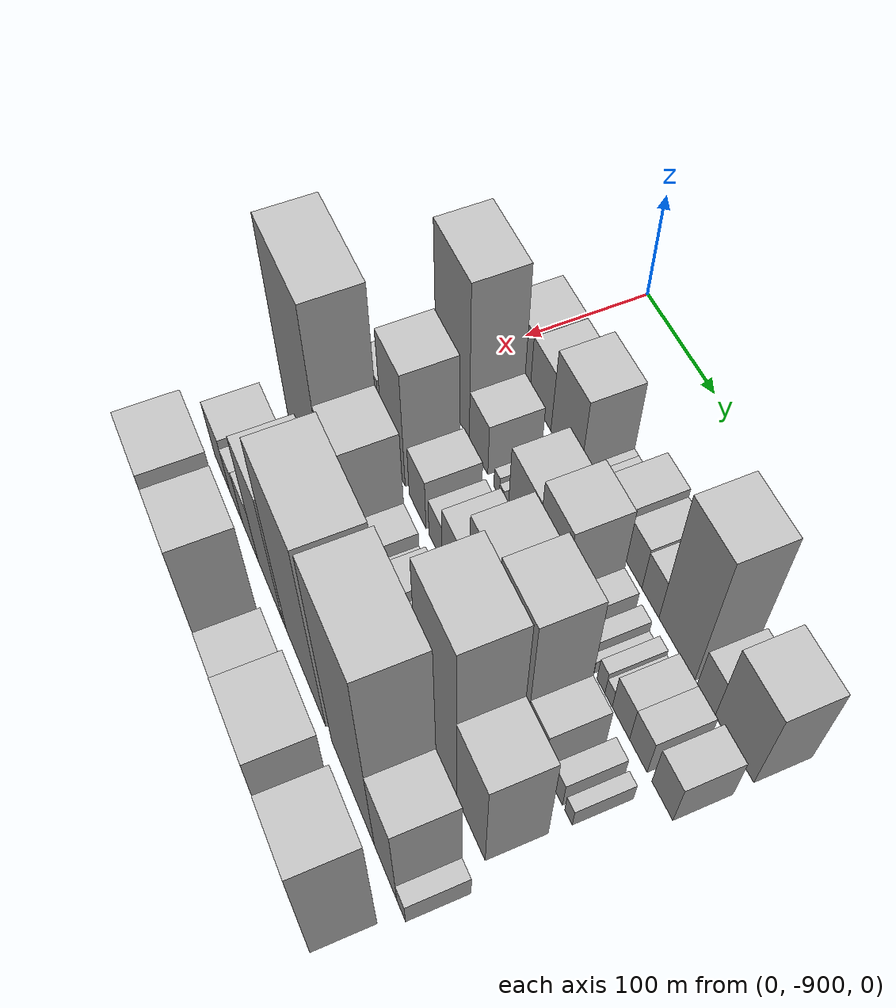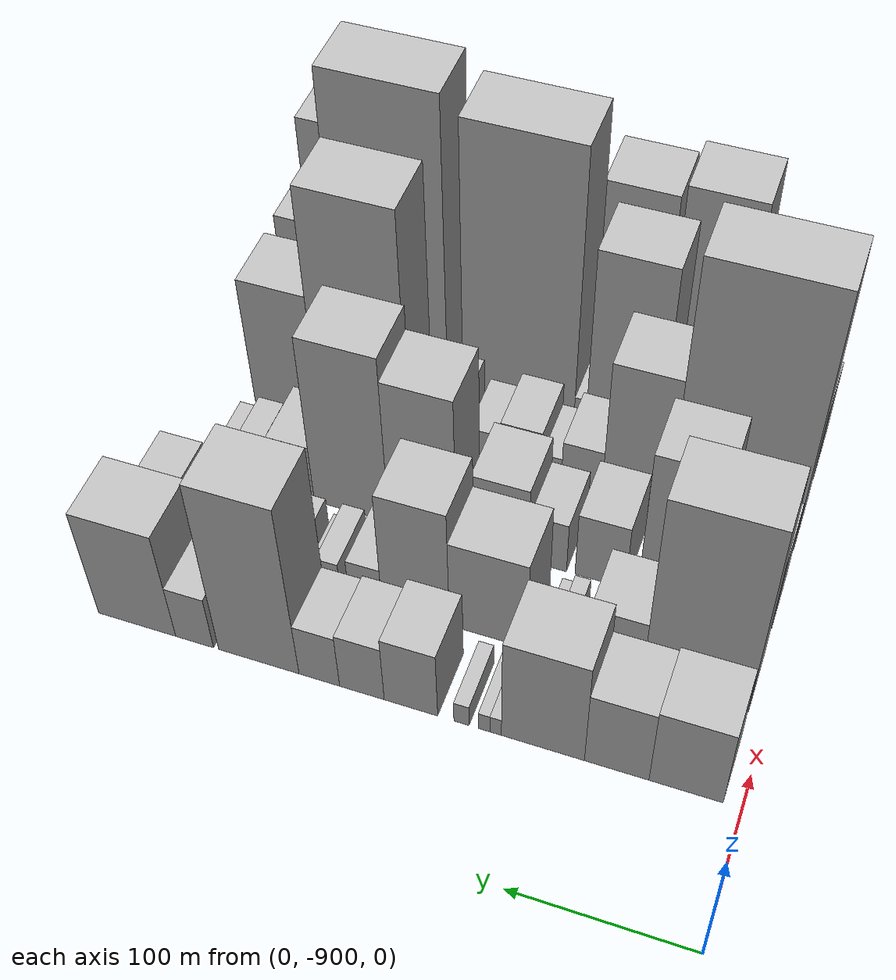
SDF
<sdf version="1.6">
 <world name="default">
  <model name="building_1">
   <static>1</static>
   <pose>100.0000 -870.5665 0 0.000000 0.000000 0.000000</pose>
   <link name="link">
    <pose>0 0 33.00 0 0 0</pose>
    <collision name="collision"><geometry><box><size>40.0000 38.8670 66.0000</size></box></geometry></collision>
    <visual name="visual">
     <cast_shadows>0</cast_shadows>
     <geometry><box><size>40.0000 38.8670 66.0000</size></box></geometry>
     <material>
      <script>
       <uri>model://HANNAS_wall/materials/scripts</uri>
       <uri>model://HANNAS_wall/materials/textures</uri>
       <name>vrc/HANNAS_wall</name>
      </script>
     </material>
    </visual>
   </link>
  </model>
  <model name="building_2">
   <static>1</static>
   <pose>100.0000 -833.9637 0 0.000000 0.000000 0.000000</pose>
   <link name="link">
    <pose>0 0 31.50 0 0 0</pose>
    <collision name="collision"><geometry><box><size>40.0000 34.3385 63.0000</size></box></geometry></collision>
    <visual name="visual">
     <cast_shadows>0</cast_shadows>
     <geometry><box><size>40.0000 34.3385 63.0000</size></box></geometry>
     <material>
      <script>
       <uri>model://HANNAS_wall/materials/scripts</uri>
       <uri>model://HANNAS_wall/materials/textures</uri>
       <name>vrc/HANNAS_wall</name>
      </script>
     </material>
    </visual>
   </link>
  </model>
  <model name="building_3">
   <static>1</static>
   <pose>100.0000 -794.2467 0 0.000000 0.000000 0.000000</pose>
   <link name="link">
    <pose>0 0 43.50 0 0 0</pose>
    <collision name="collision"><geometry><box><size>40.0000 45.0955 87.0000</size></box></geometry></collision>
    <visual name="visual">
     <cast_shadows>0</cast_shadows>
     <geometry><box><size>40.0000 45.0955 87.0000</size></box></geometry>
     <material>
      <script>
       <uri>model://HANNAS_wall/materials/scripts</uri>
       <uri>model://HANNAS_wall/materials/textures</uri>
       <name>vrc/HANNAS_wall</name>
      </script>
     </material>
    </visual>
   </link>
  </model>
  <model name="building_4">
   <static>1</static>
   <pose>100.0000 -768.5291 0 0.000000 0.000000 0.000000</pose>
   <link name="link">
    <pose>0 0 7.50 0 0 0</pose>
    <collision name="collision"><geometry><box><size>40.0000 6.3397 15.0000</size></box></geometry></collision>
    <visual name="visual">
     <cast_shadows>0</cast_shadows>
     <geometry><box><size>40.0000 6.3397 15.0000</size></box></geometry>
     <material>
      <script>
       <uri>model://HANNAS_wall/materials/scripts</uri>
       <uri>model://HANNAS_wall/materials/textures</uri>
       <name>vrc/HANNAS_wall</name>
      </script>
     </material>
    </visual>
   </link>
  </model>
  <model name="building_5">
   <static>1</static>
   <pose>100.0000 -762.1875 0 0.000000 0.000000 0.000000</pose>
   <link name="link">
    <pose>0 0 7.50 0 0 0</pose>
    <collision name="collision"><geometry><box><size>40.0000 6.3436 15.0000</size></box></geometry></collision>
    <visual name="visual">
     <cast_shadows>0</cast_shadows>
     <geometry><box><size>40.0000 6.3436 15.0000</size></box></geometry>
     <material>
      <script>
       <uri>model://HANNAS_wall/materials/scripts</uri>
       <uri>model://HANNAS_wall/materials/textures</uri>
       <name>vrc/HANNAS_wall</name>
      </script>
     </material>
    </visual>
   </link>
  </model>
  <model name="building_6">
   <static>1</static>
   <pose>100.0000 -749.7658 0 0.000000 0.000000 0.000000</pose>
   <link name="link">
    <pose>0 0 9.00 0 0 0</pose>
    <collision name="collision"><geometry><box><size>40.0000 8.4997 18.0000</size></box></geometry></collision>
    <visual name="visual">
     <cast_shadows>0</cast_shadows>
     <geometry><box><size>40.0000 8.4997 18.0000</size></box></geometry>
     <material>
      <script>
       <uri>model://HANNAS_wall/materials/scripts</uri>
       <uri>model://HANNAS_wall/materials/textures</uri>
       <name>vrc/HANNAS_wall</name>
      </script>
     </material>
    </visual>
   </link>
  </model>
  <model name="building_7">
   <static>1</static>
   <pose>100.0000 -721.4787 0 0.000000 0.000000 0.000000</pose>
   <link name="link">
    <pose>0 0 28.50 0 0 0</pose>
    <collision name="collision"><geometry><box><size>40.0000 30.0746 57.0000</size></box></geometry></collision>
    <visual name="visual">
     <cast_shadows>0</cast_shadows>
     <geometry><box><size>40.0000 30.0746 57.0000</size></box></geometry>
     <material>
      <script>
       <uri>model://HANNAS_wall/materials/scripts</uri>
       <uri>model://HANNAS_wall/materials/textures</uri>
       <name>vrc/HANNAS_wall</name>
      </script>
     </material>
    </visual>
   </link>
  </model>
  <model name="building_8">
   <static>1</static>
   <pose>100.0000 -693.7319 0 0.000000 0.000000 0.000000</pose>
   <link name="link">
    <pose>0 0 24.00 0 0 0</pose>
    <collision name="collision"><geometry><box><size>40.0000 25.4190 48.0000</size></box></geometry></collision>
    <visual name="visual">
     <cast_shadows>0</cast_shadows>
     <geometry><box><size>40.0000 25.4190 48.0000</size></box></geometry>
     <material>
      <script>
       <uri>model://HANNAS_wall/materials/scripts</uri>
       <uri>model://HANNAS_wall/materials/textures</uri>
       <name>vrc/HANNAS_wall</name>
      </script>
     </material>
    </visual>
   </link>
  </model>
  <model name="building_9">
   <static>1</static>
   <pose>100.0000 -669.3285 0 0.000000 0.000000 0.000000</pose>
   <link name="link">
    <pose>0 0 22.50 0 0 0</pose>
    <collision name="collision"><geometry><box><size>40.0000 23.3877 45.0000</size></box></geometry></collision>
    <visual name="visual">
     <cast_shadows>0</cast_shadows>
     <geometry><box><size>40.0000 23.3877 45.0000</size></box></geometry>
     <material>
      <script>
       <uri>model://HANNAS_wall/materials/scripts</uri>
       <uri>model://HANNAS_wall/materials/textures</uri>
       <name>vrc/HANNAS_wall</name>
      </script>
     </material>
    </visual>
   </link>
  </model>
  <model name="building_10">
   <static>1</static>
   <pose>100.0000 -634.0826 0 0.000000 0.000000 0.000000</pose>
   <link name="link">
    <pose>0 0 72.00 0 0 0</pose>
    <collision name="collision"><geometry><box><size>40.0000 47.1043 144.0000</size></box></geometry></collision>
    <visual name="visual">
     <cast_shadows>0</cast_shadows>
     <geometry><box><size>40.0000 47.1043 144.0000</size></box></geometry>
     <material>
      <script>
       <uri>model://HANNAS_wall/materials/scripts</uri>
       <uri>model://HANNAS_wall/materials/textures</uri>
       <name>vrc/HANNAS_wall</name>
      </script>
     </material>
    </visual>
   </link>
  </model>
  <model name="building_11">
   <static>1</static>
   <pose>100.0000 -596.2435 0 0.000000 0.000000 0.000000</pose>
   <link name="link">
    <pose>0 0 22.50 0 0 0</pose>
    <collision name="collision"><geometry><box><size>40.0000 22.5739 45.0000</size></box></geometry></collision>
    <visual name="visual">
     <cast_shadows>0</cast_shadows>
     <geometry><box><size>40.0000 22.5739 45.0000</size></box></geometry>
     <material>
      <script>
       <uri>model://HANNAS_wall/materials/scripts</uri>
       <uri>model://HANNAS_wall/materials/textures</uri>
       <name>vrc/HANNAS_wall</name>
      </script>
     </material>
    </visual>
   </link>
  </model>
  <model name="building_12">
   <static>1</static>
   <pose>100.0000 -561.6605 0 0.000000 0.000000 0.000000</pose>
   <link name="link">
    <pose>0 0 45.00 0 0 0</pose>
    <collision name="collision"><geometry><box><size>40.0000 46.5919 90.0000</size></box></geometry></collision>
    <visual name="visual">
     <cast_shadows>0</cast_shadows>
     <geometry><box><size>40.0000 46.5919 90.0000</size></box></geometry>
     <material>
      <script>
       <uri>model://HANNAS_wall/materials/scripts</uri>
       <uri>model://HANNAS_wall/materials/textures</uri>
       <name>vrc/HANNAS_wall</name>
      </script>
     </material>
    </visual>
   </link>
  </model>
  <model name="building_49">
   <static>1</static>
   <pose>155.0000 -861.0256 0 0.000000 0.000000 0.000000</pose>
   <link name="link">
    <pose>0 0 79.50 0 0 0</pose>
    <collision name="collision"><geometry><box><size>40.0000 57.9489 159.0000</size></box></geometry></collision>
    <visual name="visual">
     <cast_shadows>0</cast_shadows>
     <geometry><box><size>40.0000 57.9489 159.0000</size></box></geometry>
     <material>
      <script>
       <uri>model://HANNAS_wall/materials/scripts</uri>
       <uri>model://HANNAS_wall/materials/textures</uri>
       <name>vrc/HANNAS_wall</name>
      </script>
     </material>
    </visual>
   </link>
  </model>
  <model name="building_50">
   <static>1</static>
   <pose>155.0000 -816.4570 0 0.000000 0.000000 0.000000</pose>
   <link name="link">
    <pose>0 0 27.00 0 0 0</pose>
    <collision name="collision"><geometry><box><size>40.0000 31.1881 54.0000</size></box></geometry></collision>
    <visual name="visual">
     <cast_shadows>0</cast_shadows>
     <geometry><box><size>40.0000 31.1881 54.0000</size></box></geometry>
     <material>
      <script>
       <uri>model://HANNAS_wall/materials/scripts</uri>
       <uri>model://HANNAS_wall/materials/textures</uri>
       <name>vrc/HANNAS_wall</name>
      </script>
     </material>
    </visual>
   </link>
  </model>
  <model name="building_51">
   <static>1</static>
   <pose>155.0000 -786.3658 0 0.000000 0.000000 0.000000</pose>
   <link name="link">
    <pose>0 0 10.50 0 0 0</pose>
    <collision name="collision"><geometry><box><size>40.0000 8.9944 21.0000</size></box></geometry></collision>
    <visual name="visual">
     <cast_shadows>0</cast_shadows>
     <geometry><box><size>40.0000 8.9944 21.0000</size></box></geometry>
     <material>
      <script>
       <uri>model://HANNAS_wall/materials/scripts</uri>
       <uri>model://HANNAS_wall/materials/textures</uri>
       <name>vrc/HANNAS_wall</name>
      </script>
     </material>
    </visual>
   </link>
  </model>
  <model name="building_52">
   <static>1</static>
   <pose>155.0000 -778.3610 0 0.000000 0.000000 0.000000</pose>
   <link name="link">
    <pose>0 0 7.50 0 0 0</pose>
    <collision name="collision"><geometry><box><size>40.0000 7.0152 15.0000</size></box></geometry></collision>
    <visual name="visual">
     <cast_shadows>0</cast_shadows>
     <geometry><box><size>40.0000 7.0152 15.0000</size></box></geometry>
     <material>
      <script>
       <uri>model://HANNAS_wall/materials/scripts</uri>
       <uri>model://HANNAS_wall/materials/textures</uri>
       <name>vrc/HANNAS_wall</name>
      </script>
     </material>
    </visual>
   </link>
  </model>
  <model name="building_53">
   <static>1</static>
   <pose>155.0000 -745.5324 0 0.000000 0.000000 0.000000</pose>
   <link name="link">
    <pose>0 0 37.50 0 0 0</pose>
    <collision name="collision"><geometry><box><size>40.0000 44.6420 75.0000</size></box></geometry></collision>
    <visual name="visual">
     <cast_shadows>0</cast_shadows>
     <geometry><box><size>40.0000 44.6420 75.0000</size></box></geometry>
     <material>
      <script>
       <uri>model://HANNAS_wall/materials/scripts</uri>
       <uri>model://HANNAS_wall/materials/textures</uri>
       <name>vrc/HANNAS_wall</name>
      </script>
     </material>
    </visual>
   </link>
  </model>
  <model name="building_54">
   <static>1</static>
   <pose>155.0000 -703.4262 0 0.000000 0.000000 0.000000</pose>
   <link name="link">
    <pose>0 0 49.50 0 0 0</pose>
    <collision name="collision"><geometry><box><size>40.0000 39.5704 99.0000</size></box></geometry></collision>
    <visual name="visual">
     <cast_shadows>0</cast_shadows>
     <geometry><box><size>40.0000 39.5704 99.0000</size></box></geometry>
     <material>
      <script>
       <uri>model://HANNAS_wall/materials/scripts</uri>
       <uri>model://HANNAS_wall/materials/textures</uri>
       <name>vrc/HANNAS_wall</name>
      </script>
     </material>
    </visual>
   </link>
  </model>
  <model name="building_55">
   <static>1</static>
   <pose>155.0000 -673.8020 0 0.000000 0.000000 0.000000</pose>
   <link name="link">
    <pose>0 0 16.50 0 0 0</pose>
    <collision name="collision"><geometry><box><size>40.0000 19.6781 33.0000</size></box></geometry></collision>
    <visual name="visual">
     <cast_shadows>0</cast_shadows>
     <geometry><box><size>40.0000 19.6781 33.0000</size></box></geometry>
     <material>
      <script>
       <uri>model://HANNAS_wall/materials/scripts</uri>
       <uri>model://HANNAS_wall/materials/textures</uri>
       <name>vrc/HANNAS_wall</name>
      </script>
     </material>
    </visual>
   </link>
  </model>
  <model name="building_56">
   <static>1</static>
   <pose>155.0000 -652.4206 0 0.000000 0.000000 0.000000</pose>
   <link name="link">
    <pose>0 0 13.50 0 0 0</pose>
    <collision name="collision"><geometry><box><size>40.0000 13.0846 27.0000</size></box></geometry></collision>
    <visual name="visual">
     <cast_shadows>0</cast_shadows>
     <geometry><box><size>40.0000 13.0846 27.0000</size></box></geometry>
     <material>
      <script>
       <uri>model://HANNAS_wall/materials/scripts</uri>
       <uri>model://HANNAS_wall/materials/textures</uri>
       <name>vrc/HANNAS_wall</name>
      </script>
     </material>
    </visual>
   </link>
  </model>
  <model name="building_57">
   <static>1</static>
   <pose>155.0000 -642.7337 0 0.000000 0.000000 0.000000</pose>
   <link name="link">
    <pose>0 0 7.50 0 0 0</pose>
    <collision name="collision"><geometry><box><size>40.0000 6.2894 15.0000</size></box></geometry></collision>
    <visual name="visual">
     <cast_shadows>0</cast_shadows>
     <geometry><box><size>40.0000 6.2894 15.0000</size></box></geometry>
     <material>
      <script>
       <uri>model://HANNAS_wall/materials/scripts</uri>
       <uri>model://HANNAS_wall/materials/textures</uri>
       <name>vrc/HANNAS_wall</name>
      </script>
     </material>
    </visual>
   </link>
  </model>
  <model name="building_58">
   <static>1</static>
   <pose>155.0000 -630.1844 0 0.000000 0.000000 0.000000</pose>
   <link name="link">
    <pose>0 0 13.50 0 0 0</pose>
    <collision name="collision"><geometry><box><size>40.0000 10.8090 27.0000</size></box></geometry></collision>
    <visual name="visual">
     <cast_shadows>0</cast_shadows>
     <geometry><box><size>40.0000 10.8090 27.0000</size></box></geometry>
     <material>
      <script>
       <uri>model://HANNAS_wall/materials/scripts</uri>
       <uri>model://HANNAS_wall/materials/textures</uri>
       <name>vrc/HANNAS_wall</name>
      </script>
     </material>
    </visual>
   </link>
  </model>
  <model name="building_59">
   <static>1</static>
   <pose>155.0000 -619.8137 0 0.000000 0.000000 0.000000</pose>
   <link name="link">
    <pose>0 0 10.50 0 0 0</pose>
    <collision name="collision"><geometry><box><size>40.0000 9.9325 21.0000</size></box></geometry></collision>
    <visual name="visual">
     <cast_shadows>0</cast_shadows>
     <geometry><box><size>40.0000 9.9325 21.0000</size></box></geometry>
     <material>
      <script>
       <uri>model://HANNAS_wall/materials/scripts</uri>
       <uri>model://HANNAS_wall/materials/textures</uri>
       <name>vrc/HANNAS_wall</name>
      </script>
     </material>
    </visual>
   </link>
  </model>
  <model name="building_60">
   <static>1</static>
   <pose>155.0000 -603.3573 0 0.000000 0.000000 0.000000</pose>
   <link name="link">
    <pose>0 0 21.00 0 0 0</pose>
    <collision name="collision"><geometry><box><size>40.0000 22.9801 42.0000</size></box></geometry></collision>
    <visual name="visual">
     <cast_shadows>0</cast_shadows>
     <geometry><box><size>40.0000 22.9801 42.0000</size></box></geometry>
     <material>
      <script>
       <uri>model://HANNAS_wall/materials/scripts</uri>
       <uri>model://HANNAS_wall/materials/textures</uri>
       <name>vrc/HANNAS_wall</name>
      </script>
     </material>
    </visual>
   </link>
  </model>
  <model name="building_61">
   <static>1</static>
   <pose>155.0000 -580.4844 0 0.000000 0.000000 0.000000</pose>
   <link name="link">
    <pose>0 0 21.00 0 0 0</pose>
    <collision name="collision"><geometry><box><size>40.0000 22.7658 42.0000</size></box></geometry></collision>
    <visual name="visual">
     <cast_shadows>0</cast_shadows>
     <geometry><box><size>40.0000 22.7658 42.0000</size></box></geometry>
     <material>
      <script>
       <uri>model://HANNAS_wall/materials/scripts</uri>
       <uri>model://HANNAS_wall/materials/textures</uri>
       <name>vrc/HANNAS_wall</name>
      </script>
     </material>
    </visual>
   </link>
  </model>
  <model name="building_62">
   <static>1</static>
   <pose>155.0000 -550.0269 0 0.000000 0.000000 0.000000</pose>
   <link name="link">
    <pose>0 0 24.00 0 0 0</pose>
    <collision name="collision"><geometry><box><size>40.0000 26.1493 48.0000</size></box></geometry></collision>
    <visual name="visual">
     <cast_shadows>0</cast_shadows>
     <geometry><box><size>40.0000 26.1493 48.0000</size></box></geometry>
     <material>
      <script>
       <uri>model://HANNAS_wall/materials/scripts</uri>
       <uri>model://HANNAS_wall/materials/textures</uri>
       <name>vrc/HANNAS_wall</name>
      </script>
     </material>
    </visual>
   </link>
  </model>
  <model name="building_104">
   <static>1</static>
   <pose>210.0000 -874.1644 0 0.000000 0.000000 0.000000</pose>
   <link name="link">
    <pose>0 0 31.50 0 0 0</pose>
    <collision name="collision"><geometry><box><size>40.0000 31.6712 63.0000</size></box></geometry></collision>
    <visual name="visual">
     <cast_shadows>0</cast_shadows>
     <geometry><box><size>40.0000 31.6712 63.0000</size></box></geometry>
     <material>
      <script>
       <uri>model://HANNAS_wall/materials/scripts</uri>
       <uri>model://HANNAS_wall/materials/textures</uri>
       <name>vrc/HANNAS_wall</name>
      </script>
     </material>
    </visual>
   </link>
  </model>
  <model name="building_105">
   <static>1</static>
   <pose>210.0000 -834.2856 0 0.000000 0.000000 0.000000</pose>
   <link name="link">
    <pose>0 0 60.00 0 0 0</pose>
    <collision name="collision"><geometry><box><size>40.0000 40.0864 120.0000</size></box></geometry></collision>
    <visual name="visual">
     <cast_shadows>0</cast_shadows>
     <geometry><box><size>40.0000 40.0864 120.0000</size></box></geometry>
     <material>
      <script>
       <uri>model://HANNAS_wall/materials/scripts</uri>
       <uri>model://HANNAS_wall/materials/textures</uri>
       <name>vrc/HANNAS_wall</name>
      </script>
     </material>
    </visual>
   </link>
  </model>
  <model name="building_106">
   <static>1</static>
   <pose>210.0000 -792.5745 0 0.000000 0.000000 0.000000</pose>
   <link name="link">
    <pose>0 0 27.00 0 0 0</pose>
    <collision name="collision"><geometry><box><size>40.0000 29.3358 54.0000</size></box></geometry></collision>
    <visual name="visual">
     <cast_shadows>0</cast_shadows>
     <geometry><box><size>40.0000 29.3358 54.0000</size></box></geometry>
     <material>
      <script>
       <uri>model://HANNAS_wall/materials/scripts</uri>
       <uri>model://HANNAS_wall/materials/textures</uri>
       <name>vrc/HANNAS_wall</name>
      </script>
     </material>
    </visual>
   </link>
  </model>
  <model name="building_107">
   <static>1</static>
   <pose>210.0000 -761.7147 0 0.000000 0.000000 0.000000</pose>
   <link name="link">
    <pose>0 0 21.00 0 0 0</pose>
    <collision name="collision"><geometry><box><size>40.0000 22.3837 42.0000</size></box></geometry></collision>
    <visual name="visual">
     <cast_shadows>0</cast_shadows>
     <geometry><box><size>40.0000 22.3837 42.0000</size></box></geometry>
     <material>
      <script>
       <uri>model://HANNAS_wall/materials/scripts</uri>
       <uri>model://HANNAS_wall/materials/textures</uri>
       <name>vrc/HANNAS_wall</name>
      </script>
     </material>
    </visual>
   </link>
  </model>
  <model name="building_108">
   <static>1</static>
   <pose>210.0000 -733.4990 0 0.000000 0.000000 0.000000</pose>
   <link name="link">
    <pose>0 0 31.50 0 0 0</pose>
    <collision name="collision"><geometry><box><size>40.0000 34.0477 63.0000</size></box></geometry></collision>
    <visual name="visual">
     <cast_shadows>0</cast_shadows>
     <geometry><box><size>40.0000 34.0477 63.0000</size></box></geometry>
     <material>
      <script>
       <uri>model://HANNAS_wall/materials/scripts</uri>
       <uri>model://HANNAS_wall/materials/textures</uri>
       <name>vrc/HANNAS_wall</name>
      </script>
     </material>
    </visual>
   </link>
  </model>
  <model name="building_109">
   <static>1</static>
   <pose>210.0000 -686.9169 0 0.000000 0.000000 0.000000</pose>
   <link name="link">
    <pose>0 0 60.00 0 0 0</pose>
    <collision name="collision"><geometry><box><size>40.0000 41.1166 120.0000</size></box></geometry></collision>
    <visual name="visual">
     <cast_shadows>0</cast_shadows>
     <geometry><box><size>40.0000 41.1166 120.0000</size></box></geometry>
     <material>
      <script>
       <uri>model://HANNAS_wall/materials/scripts</uri>
       <uri>model://HANNAS_wall/materials/textures</uri>
       <name>vrc/HANNAS_wall</name>
      </script>
     </material>
    </visual>
   </link>
  </model>
  <model name="building_110">
   <static>1</static>
   <pose>210.0000 -643.2424 0 0.000000 0.000000 0.000000</pose>
   <link name="link">
    <pose>0 0 69.00 0 0 0</pose>
    <collision name="collision"><geometry><box><size>40.0000 46.2323 138.0000</size></box></geometry></collision>
    <visual name="visual">
     <cast_shadows>0</cast_shadows>
     <geometry><box><size>40.0000 46.2323 138.0000</size></box></geometry>
     <material>
      <script>
       <uri>model://HANNAS_wall/materials/scripts</uri>
       <uri>model://HANNAS_wall/materials/textures</uri>
       <name>vrc/HANNAS_wall</name>
      </script>
     </material>
    </visual>
   </link>
  </model>
  <model name="building_111">
   <static>1</static>
   <pose>210.0000 -607.3553 0 0.000000 0.000000 0.000000</pose>
   <link name="link">
    <pose>0 0 24.00 0 0 0</pose>
    <collision name="collision"><geometry><box><size>40.0000 25.5418 48.0000</size></box></geometry></collision>
    <visual name="visual">
     <cast_shadows>0</cast_shadows>
     <geometry><box><size>40.0000 25.5418 48.0000</size></box></geometry>
     <material>
      <script>
       <uri>model://HANNAS_wall/materials/scripts</uri>
       <uri>model://HANNAS_wall/materials/textures</uri>
       <name>vrc/HANNAS_wall</name>
      </script>
     </material>
    </visual>
   </link>
  </model>
  <model name="building_112">
   <static>1</static>
   <pose>210.0000 -578.7234 0 0.000000 0.000000 0.000000</pose>
   <link name="link">
    <pose>0 0 15.00 0 0 0</pose>
    <collision name="collision"><geometry><box><size>40.0000 15.7219 30.0000</size></box></geometry></collision>
    <visual name="visual">
     <cast_shadows>0</cast_shadows>
     <geometry><box><size>40.0000 15.7219 30.0000</size></box></geometry>
     <material>
      <script>
       <uri>model://HANNAS_wall/materials/scripts</uri>
       <uri>model://HANNAS_wall/materials/textures</uri>
       <name>vrc/HANNAS_wall</name>
      </script>
     </material>
    </visual>
   </link>
  </model>
  <model name="building_113">
   <static>1</static>
   <pose>210.0000 -562.8515 0 0.000000 0.000000 0.000000</pose>
   <link name="link">
    <pose>0 0 10.50 0 0 0</pose>
    <collision name="collision"><geometry><box><size>40.0000 10.0219 21.0000</size></box></geometry></collision>
    <visual name="visual">
     <cast_shadows>0</cast_shadows>
     <geometry><box><size>40.0000 10.0219 21.0000</size></box></geometry>
     <material>
      <script>
       <uri>model://HANNAS_wall/materials/scripts</uri>
       <uri>model://HANNAS_wall/materials/textures</uri>
       <name>vrc/HANNAS_wall</name>
      </script>
     </material>
    </visual>
   </link>
  </model>
  <model name="building_158">
   <static>1</static>
   <pose>265.0000 -853.0560 0 0.000000 0.000000 0.000000</pose>
   <link name="link">
    <pose>0 0 103.50 0 0 0</pose>
    <collision name="collision"><geometry><box><size>40.0000 73.8879 207.0000</size></box></geometry></collision>
    <visual name="visual">
     <cast_shadows>0</cast_shadows>
     <geometry><box><size>40.0000 73.8879 207.0000</size></box></geometry>
     <material>
      <script>
       <uri>model://HANNAS_wall/materials/scripts</uri>
       <uri>model://HANNAS_wall/materials/textures</uri>
       <name>vrc/HANNAS_wall</name>
      </script>
     </material>
    </visual>
   </link>
  </model>
  <model name="building_159">
   <static>1</static>
   <pose>265.0000 -796.4685 0 0.000000 0.000000 0.000000</pose>
   <link name="link">
    <pose>0 0 58.50 0 0 0</pose>
    <collision name="collision"><geometry><box><size>40.0000 39.2871 117.0000</size></box></geometry></collision>
    <visual name="visual">
     <cast_shadows>0</cast_shadows>
     <geometry><box><size>40.0000 39.2871 117.0000</size></box></geometry>
     <material>
      <script>
       <uri>model://HANNAS_wall/materials/scripts</uri>
       <uri>model://HANNAS_wall/materials/textures</uri>
       <name>vrc/HANNAS_wall</name>
      </script>
     </material>
    </visual>
   </link>
  </model>
  <model name="building_160">
   <static>1</static>
   <pose>265.0000 -764.6137 0 0.000000 0.000000 0.000000</pose>
   <link name="link">
    <pose>0 0 21.00 0 0 0</pose>
    <collision name="collision"><geometry><box><size>40.0000 24.4224 42.0000</size></box></geometry></collision>
    <visual name="visual">
     <cast_shadows>0</cast_shadows>
     <geometry><box><size>40.0000 24.4224 42.0000</size></box></geometry>
     <material>
      <script>
       <uri>model://HANNAS_wall/materials/scripts</uri>
       <uri>model://HANNAS_wall/materials/textures</uri>
       <name>vrc/HANNAS_wall</name>
      </script>
     </material>
    </visual>
   </link>
  </model>
  <model name="building_161">
   <static>1</static>
   <pose>265.0000 -746.3410 0 0.000000 0.000000 0.000000</pose>
   <link name="link">
    <pose>0 0 13.50 0 0 0</pose>
    <collision name="collision"><geometry><box><size>40.0000 12.1230 27.0000</size></box></geometry></collision>
    <visual name="visual">
     <cast_shadows>0</cast_shadows>
     <geometry><box><size>40.0000 12.1230 27.0000</size></box></geometry>
     <material>
      <script>
       <uri>model://HANNAS_wall/materials/scripts</uri>
       <uri>model://HANNAS_wall/materials/textures</uri>
       <name>vrc/HANNAS_wall</name>
      </script>
     </material>
    </visual>
   </link>
  </model>
  <model name="building_162">
   <static>1</static>
   <pose>265.0000 -727.6790 0 0.000000 0.000000 0.000000</pose>
   <link name="link">
    <pose>0 0 22.50 0 0 0</pose>
    <collision name="collision"><geometry><box><size>40.0000 25.2010 45.0000</size></box></geometry></collision>
    <visual name="visual">
     <cast_shadows>0</cast_shadows>
     <geometry><box><size>40.0000 25.2010 45.0000</size></box></geometry>
     <material>
      <script>
       <uri>model://HANNAS_wall/materials/scripts</uri>
       <uri>model://HANNAS_wall/materials/textures</uri>
       <name>vrc/HANNAS_wall</name>
      </script>
     </material>
    </visual>
   </link>
  </model>
  <model name="building_163">
   <static>1</static>
   <pose>265.0000 -705.3240 0 0.000000 0.000000 0.000000</pose>
   <link name="link">
    <pose>0 0 16.50 0 0 0</pose>
    <collision name="collision"><geometry><box><size>40.0000 19.5089 33.0000</size></box></geometry></collision>
    <visual name="visual">
     <cast_shadows>0</cast_shadows>
     <geometry><box><size>40.0000 19.5089 33.0000</size></box></geometry>
     <material>
      <script>
       <uri>model://HANNAS_wall/materials/scripts</uri>
       <uri>model://HANNAS_wall/materials/textures</uri>
       <name>vrc/HANNAS_wall</name>
      </script>
     </material>
    </visual>
   </link>
  </model>
  <model name="building_164">
   <static>1</static>
   <pose>265.0000 -677.1721 0 0.000000 0.000000 0.000000</pose>
   <link name="link">
    <pose>0 0 24.00 0 0 0</pose>
    <collision name="collision"><geometry><box><size>40.0000 28.7949 48.0000</size></box></geometry></collision>
    <visual name="visual">
     <cast_shadows>0</cast_shadows>
     <geometry><box><size>40.0000 28.7949 48.0000</size></box></geometry>
     <material>
      <script>
       <uri>model://HANNAS_wall/materials/scripts</uri>
       <uri>model://HANNAS_wall/materials/textures</uri>
       <name>vrc/HANNAS_wall</name>
      </script>
     </material>
    </visual>
   </link>
  </model>
  <model name="building_165">
   <static>1</static>
   <pose>265.0000 -629.0844 0 0.000000 0.000000 0.000000</pose>
   <link name="link">
    <pose>0 0 94.50 0 0 0</pose>
    <collision name="collision"><geometry><box><size>40.0000 57.3803 189.0000</size></box></geometry></collision>
    <visual name="visual">
     <cast_shadows>0</cast_shadows>
     <geometry><box><size>40.0000 57.3803 189.0000</size></box></geometry>
     <material>
      <script>
       <uri>model://HANNAS_wall/materials/scripts</uri>
       <uri>model://HANNAS_wall/materials/textures</uri>
       <name>vrc/HANNAS_wall</name>
      </script>
     </material>
    </visual>
   </link>
  </model>
  <model name="building_166">
   <static>1</static>
   <pose>265.0000 -579.6141 0 0.000000 0.000000 0.000000</pose>
   <link name="link">
    <pose>0 0 54.00 0 0 0</pose>
    <collision name="collision"><geometry><box><size>40.0000 41.5603 108.0000</size></box></geometry></collision>
    <visual name="visual">
     <cast_shadows>0</cast_shadows>
     <geometry><box><size>40.0000 41.5603 108.0000</size></box></geometry>
     <material>
      <script>
       <uri>model://HANNAS_wall/materials/scripts</uri>
       <uri>model://HANNAS_wall/materials/textures</uri>
       <name>vrc/HANNAS_wall</name>
      </script>
     </material>
    </visual>
   </link>
  </model>
  <model name="building_210">
   <static>1</static>
   <pose>320.0000 -873.1106 0 0.000000 0.000000 0.000000</pose>
   <link name="link">
    <pose>0 0 30.00 0 0 0</pose>
    <collision name="collision"><geometry><box><size>40.0000 33.7788 60.0000</size></box></geometry></collision>
    <visual name="visual">
     <cast_shadows>0</cast_shadows>
     <geometry><box><size>40.0000 33.7788 60.0000</size></box></geometry>
     <material>
      <script>
       <uri>model://HANNAS_wall/materials/scripts</uri>
       <uri>model://HANNAS_wall/materials/textures</uri>
       <name>vrc/HANNAS_wall</name>
      </script>
     </material>
    </visual>
   </link>
  </model>
  <model name="building_211">
   <static>1</static>
   <pose>320.0000 -843.1244 0 0.000000 0.000000 0.000000</pose>
   <link name="link">
    <pose>0 0 25.50 0 0 0</pose>
    <collision name="collision"><geometry><box><size>40.0000 26.1935 51.0000</size></box></geometry></collision>
    <visual name="visual">
     <cast_shadows>0</cast_shadows>
     <geometry><box><size>40.0000 26.1935 51.0000</size></box></geometry>
     <material>
      <script>
       <uri>model://HANNAS_wall/materials/scripts</uri>
       <uri>model://HANNAS_wall/materials/textures</uri>
       <name>vrc/HANNAS_wall</name>
      </script>
     </material>
    </visual>
   </link>
  </model>
  <model name="building_212">
   <static>1</static>
   <pose>320.0000 -813.8035 0 0.000000 0.000000 0.000000</pose>
   <link name="link">
    <pose>0 0 30.00 0 0 0</pose>
    <collision name="collision"><geometry><box><size>40.0000 32.4484 60.0000</size></box></geometry></collision>
    <visual name="visual">
     <cast_shadows>0</cast_shadows>
     <geometry><box><size>40.0000 32.4484 60.0000</size></box></geometry>
     <material>
      <script>
       <uri>model://HANNAS_wall/materials/scripts</uri>
       <uri>model://HANNAS_wall/materials/textures</uri>
       <name>vrc/HANNAS_wall</name>
      </script>
     </material>
    </visual>
   </link>
  </model>
  <model name="building_213">
   <static>1</static>
   <pose>320.0000 -774.2955 0 0.000000 0.000000 0.000000</pose>
   <link name="link">
    <pose>0 0 70.50 0 0 0</pose>
    <collision name="collision"><geometry><box><size>40.0000 46.5674 141.0000</size></box></geometry></collision>
    <visual name="visual">
     <cast_shadows>0</cast_shadows>
     <geometry><box><size>40.0000 46.5674 141.0000</size></box></geometry>
     <material>
      <script>
       <uri>model://HANNAS_wall/materials/scripts</uri>
       <uri>model://HANNAS_wall/materials/textures</uri>
       <name>vrc/HANNAS_wall</name>
      </script>
     </material>
    </visual>
   </link>
  </model>
  <model name="building_214">
   <static>1</static>
   <pose>320.0000 -747.2625 0 0.000000 0.000000 0.000000</pose>
   <link name="link">
    <pose>0 0 9.00 0 0 0</pose>
    <collision name="collision"><geometry><box><size>40.0000 7.4987 18.0000</size></box></geometry></collision>
    <visual name="visual">
     <cast_shadows>0</cast_shadows>
     <geometry><box><size>40.0000 7.4987 18.0000</size></box></geometry>
     <material>
      <script>
       <uri>model://HANNAS_wall/materials/scripts</uri>
       <uri>model://HANNAS_wall/materials/textures</uri>
       <name>vrc/HANNAS_wall</name>
      </script>
     </material>
    </visual>
   </link>
  </model>
  <model name="building_215">
   <static>1</static>
   <pose>320.0000 -707.9552 0 0.000000 0.000000 0.000000</pose>
   <link name="link">
    <pose>0 0 105.00 0 0 0</pose>
    <collision name="collision"><geometry><box><size>40.0000 71.1159 210.0000</size></box></geometry></collision>
    <visual name="visual">
     <cast_shadows>0</cast_shadows>
     <geometry><box><size>40.0000 71.1159 210.0000</size></box></geometry>
     <material>
      <script>
       <uri>model://HANNAS_wall/materials/scripts</uri>
       <uri>model://HANNAS_wall/materials/textures</uri>
       <name>vrc/HANNAS_wall</name>
      </script>
     </material>
    </visual>
   </link>
  </model>
  <model name="building_216">
   <static>1</static>
   <pose>320.0000 -627.3187 0 0.000000 0.000000 0.000000</pose>
   <link name="link">
    <pose>0 0 111.00 0 0 0</pose>
    <collision name="collision"><geometry><box><size>40.0000 70.1571 222.0000</size></box></geometry></collision>
    <visual name="visual">
     <cast_shadows>0</cast_shadows>
     <geometry><box><size>40.0000 70.1571 222.0000</size></box></geometry>
     <material>
      <script>
       <uri>model://HANNAS_wall/materials/scripts</uri>
       <uri>model://HANNAS_wall/materials/textures</uri>
       <name>vrc/HANNAS_wall</name>
      </script>
     </material>
    </visual>
   </link>
  </model>
  <model name="building_217">
   <static>1</static>
   <pose>320.0000 -575.0101 0 0.000000 0.000000 0.000000</pose>
   <link name="link">
    <pose>0 0 54.00 0 0 0</pose>
    <collision name="collision"><geometry><box><size>40.0000 34.4601 108.0000</size></box></geometry></collision>
    <visual name="visual">
     <cast_shadows>0</cast_shadows>
     <geometry><box><size>40.0000 34.4601 108.0000</size></box></geometry>
     <material>
      <script>
       <uri>model://HANNAS_wall/materials/scripts</uri>
       <uri>model://HANNAS_wall/materials/textures</uri>
       <name>vrc/HANNAS_wall</name>
      </script>
     </material>
    </visual>
   </link>
  </model>
  <model name="building_218">
   <static>1</static>
   <pose>320.0000 -551.2612 0 0.000000 0.000000 0.000000</pose>
   <link name="link">
    <pose>0 0 13.50 0 0 0</pose>
    <collision name="collision"><geometry><box><size>40.0000 13.0377 27.0000</size></box></geometry></collision>
    <visual name="visual">
     <cast_shadows>0</cast_shadows>
     <geometry><box><size>40.0000 13.0377 27.0000</size></box></geometry>
     <material>
      <script>
       <uri>model://HANNAS_wall/materials/scripts</uri>
       <uri>model://HANNAS_wall/materials/textures</uri>
       <name>vrc/HANNAS_wall</name>
      </script>
     </material>
    </visual>
   </link>
  </model>
  <model name="building_263">
   <static>1</static>
   <pose>375.0000 -876.8918 0 0.000000 0.000000 0.000000</pose>
   <link name="link">
    <pose>0 0 10.50 0 0 0</pose>
    <collision name="collision"><geometry><box><size>40.0000 10.2163 21.0000</size></box></geometry></collision>
    <visual name="visual">
     <cast_shadows>0</cast_shadows>
     <geometry><box><size>40.0000 10.2163 21.0000</size></box></geometry>
     <material>
      <script>
       <uri>model://HANNAS_wall/materials/scripts</uri>
       <uri>model://HANNAS_wall/materials/textures</uri>
       <name>vrc/HANNAS_wall</name>
      </script>
     </material>
    </visual>
   </link>
  </model>
  <model name="building_264">
   <static>1</static>
   <pose>375.0000 -852.0824 0 0.000000 0.000000 0.000000</pose>
   <link name="link">
    <pose>0 0 49.50 0 0 0</pose>
    <collision name="collision"><geometry><box><size>40.0000 39.4026 99.0000</size></box></geometry></collision>
    <visual name="visual">
     <cast_shadows>0</cast_shadows>
     <geometry><box><size>40.0000 39.4026 99.0000</size></box></geometry>
     <material>
      <script>
       <uri>model://HANNAS_wall/materials/scripts</uri>
       <uri>model://HANNAS_wall/materials/textures</uri>
       <name>vrc/HANNAS_wall</name>
      </script>
     </material>
    </visual>
   </link>
  </model>
  <model name="building_265">
   <static>1</static>
   <pose>375.0000 -809.0485 0 0.000000 0.000000 0.000000</pose>
   <link name="link">
    <pose>0 0 75.00 0 0 0</pose>
    <collision name="collision"><geometry><box><size>40.0000 46.6653 150.0000</size></box></geometry></collision>
    <visual name="visual">
     <cast_shadows>0</cast_shadows>
     <geometry><box><size>40.0000 46.6653 150.0000</size></box></geometry>
     <material>
      <script>
       <uri>model://HANNAS_wall/materials/scripts</uri>
       <uri>model://HANNAS_wall/materials/textures</uri>
       <name>vrc/HANNAS_wall</name>
      </script>
     </material>
    </visual>
   </link>
  </model>
  <model name="building_266">
   <static>1</static>
   <pose>375.0000 -760.7729 0 0.000000 0.000000 0.000000</pose>
   <link name="link">
    <pose>0 0 70.50 0 0 0</pose>
    <collision name="collision"><geometry><box><size>40.0000 43.8858 141.0000</size></box></geometry></collision>
    <visual name="visual">
     <cast_shadows>0</cast_shadows>
     <geometry><box><size>40.0000 43.8858 141.0000</size></box></geometry>
     <material>
      <script>
       <uri>model://HANNAS_wall/materials/scripts</uri>
       <uri>model://HANNAS_wall/materials/textures</uri>
       <name>vrc/HANNAS_wall</name>
      </script>
     </material>
    </visual>
   </link>
  </model>
  <model name="building_267">
   <static>1</static>
   <pose>375.0000 -727.0809 0 0.000000 0.000000 0.000000</pose>
   <link name="link">
    <pose>0 0 9.00 0 0 0</pose>
    <collision name="collision"><geometry><box><size>40.0000 7.4982 18.0000</size></box></geometry></collision>
    <visual name="visual">
     <cast_shadows>0</cast_shadows>
     <geometry><box><size>40.0000 7.4982 18.0000</size></box></geometry>
     <material>
      <script>
       <uri>model://HANNAS_wall/materials/scripts</uri>
       <uri>model://HANNAS_wall/materials/textures</uri>
       <name>vrc/HANNAS_wall</name>
      </script>
     </material>
    </visual>
   </link>
  </model>
  <model name="building_268">
   <static>1</static>
   <pose>375.0000 -691.6708 0 0.000000 0.000000 0.000000</pose>
   <link name="link">
    <pose>0 0 43.50 0 0 0</pose>
    <collision name="collision"><geometry><box><size>40.0000 51.3218 87.0000</size></box></geometry></collision>
    <visual name="visual">
     <cast_shadows>0</cast_shadows>
     <geometry><box><size>40.0000 51.3218 87.0000</size></box></geometry>
     <material>
      <script>
       <uri>model://HANNAS_wall/materials/scripts</uri>
       <uri>model://HANNAS_wall/materials/textures</uri>
       <name>vrc/HANNAS_wall</name>
      </script>
     </material>
    </visual>
   </link>
  </model>
  <model name="building_269">
   <static>1</static>
   <pose>375.0000 -640.3113 0 0.000000 0.000000 0.000000</pose>
   <link name="link">
    <pose>0 0 64.50 0 0 0</pose>
    <collision name="collision"><geometry><box><size>40.0000 51.3973 129.0000</size></box></geometry></collision>
    <visual name="visual">
     <cast_shadows>0</cast_shadows>
     <geometry><box><size>40.0000 51.3973 129.0000</size></box></geometry>
     <material>
      <script>
       <uri>model://HANNAS_wall/materials/scripts</uri>
       <uri>model://HANNAS_wall/materials/textures</uri>
       <name>vrc/HANNAS_wall</name>
      </script>
     </material>
    </visual>
   </link>
  </model>
  <model name="building_270">
   <static>1</static>
   <pose>375.0000 -609.9226 0 0.000000 0.000000 0.000000</pose>
   <link name="link">
    <pose>0 0 10.50 0 0 0</pose>
    <collision name="collision"><geometry><box><size>40.0000 9.3801 21.0000</size></box></geometry></collision>
    <visual name="visual">
     <cast_shadows>0</cast_shadows>
     <geometry><box><size>40.0000 9.3801 21.0000</size></box></geometry>
     <material>
      <script>
       <uri>model://HANNAS_wall/materials/scripts</uri>
       <uri>model://HANNAS_wall/materials/textures</uri>
       <name>vrc/HANNAS_wall</name>
      </script>
     </material>
    </visual>
   </link>
  </model>
  <model name="building_271">
   <static>1</static>
   <pose>375.0000 -572.6704 0 0.000000 0.000000 0.000000</pose>
   <link name="link">
    <pose>0 0 67.50 0 0 0</pose>
    <collision name="collision"><geometry><box><size>40.0000 45.1243 135.0000</size></box></geometry></collision>
    <visual name="visual">
     <cast_shadows>0</cast_shadows>
     <geometry><box><size>40.0000 45.1243 135.0000</size></box></geometry>
     <material>
      <script>
       <uri>model://HANNAS_wall/materials/scripts</uri>
       <uri>model://HANNAS_wall/materials/textures</uri>
       <name>vrc/HANNAS_wall</name>
      </script>
     </material>
    </visual>
   </link>
  </model>
 </world>
</sdf>
